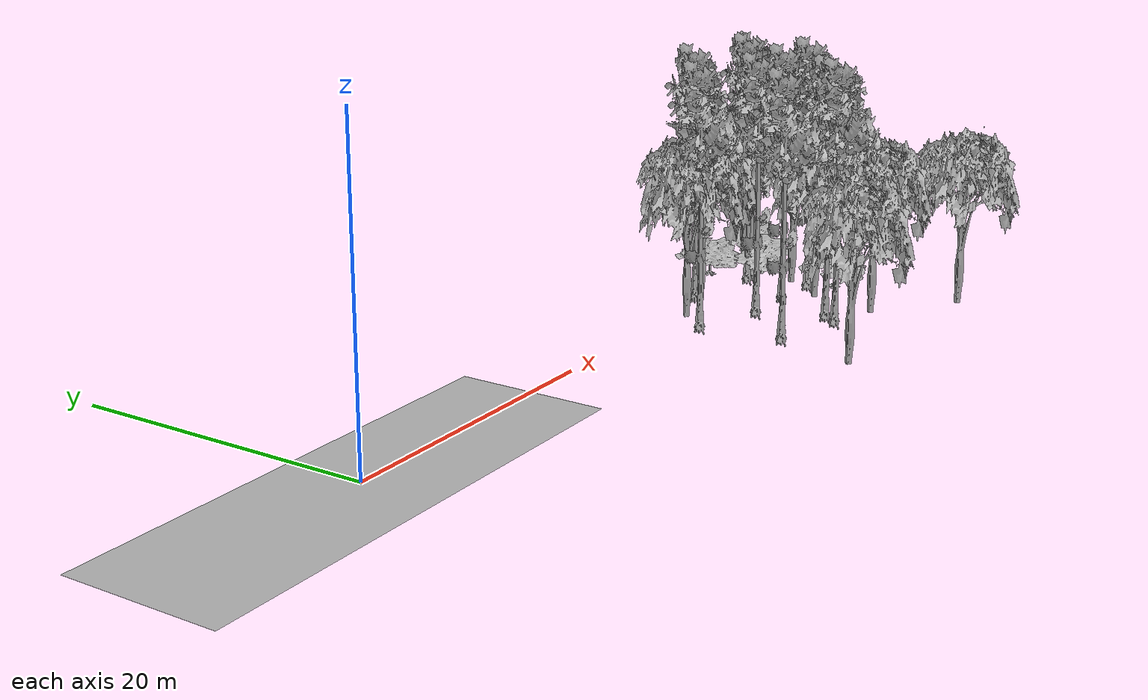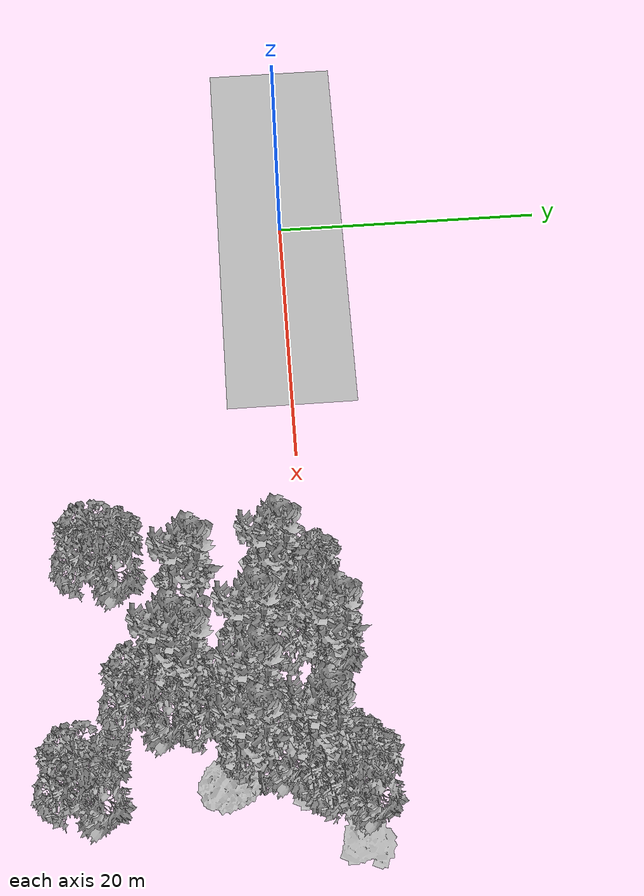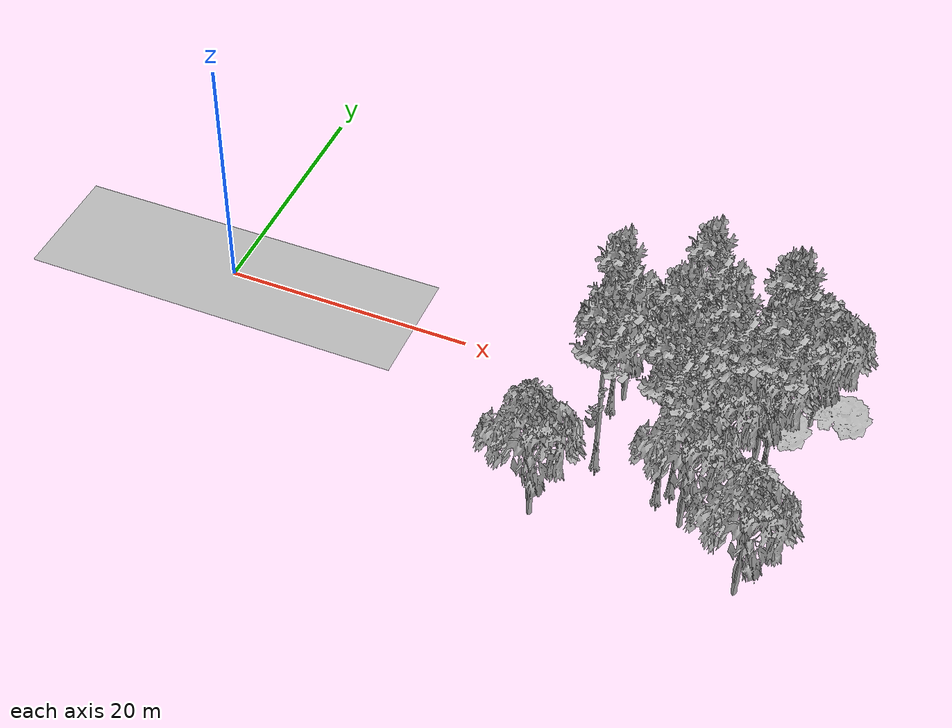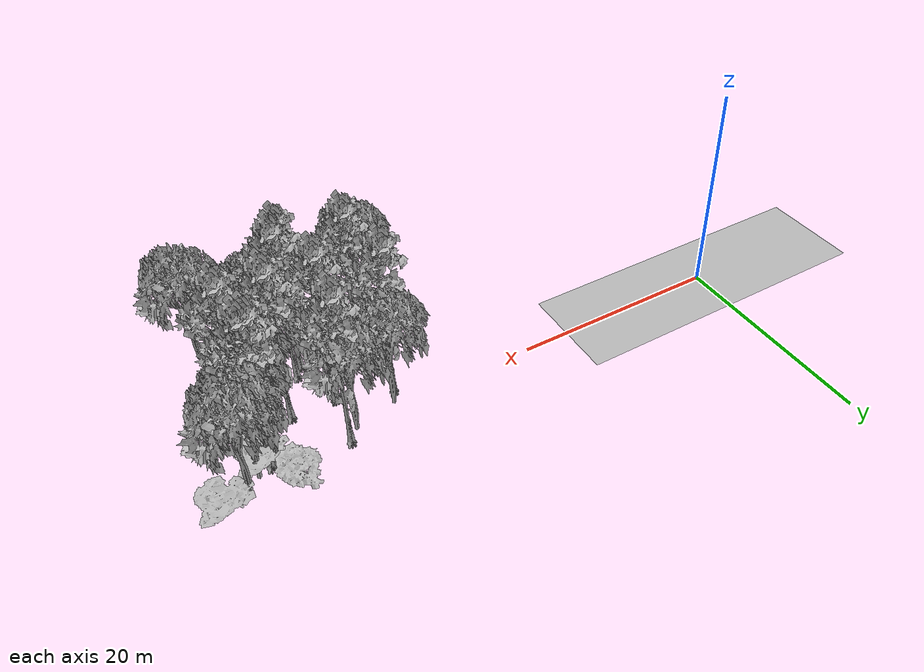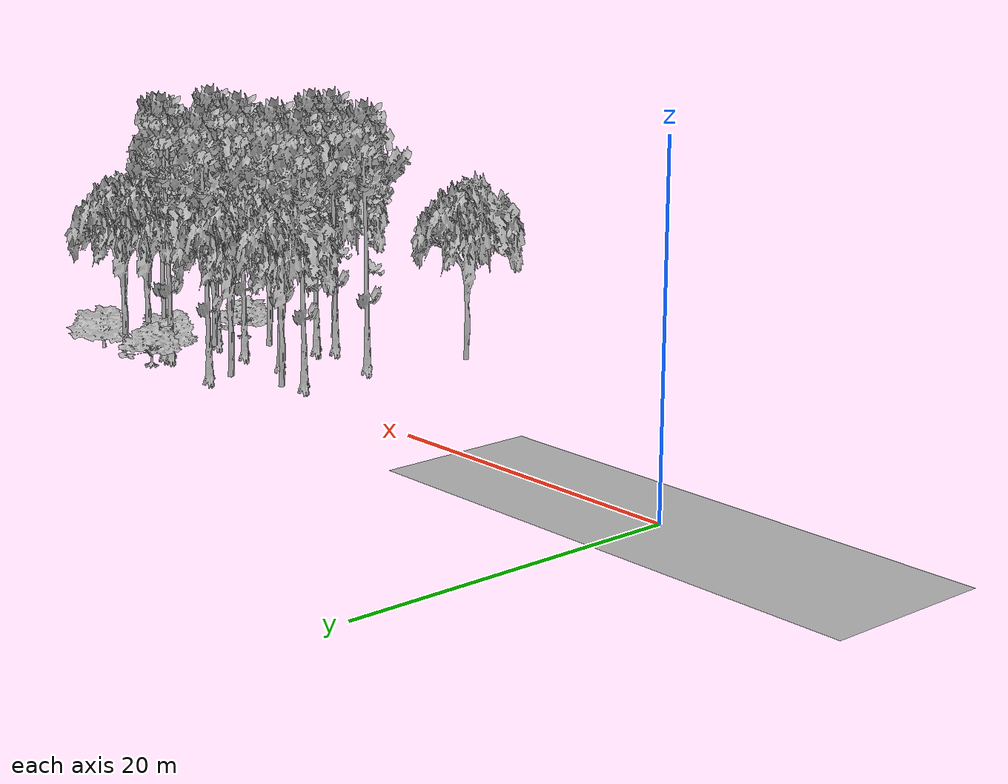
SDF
<sdf version="1.7">
 <world name="default">
  <model name="ground_plane">
   <static>1</static>
   <link name="link">
    <collision name="collision">
     <pose>-50 0 0 0 -0 0</pose>
     <geometry><plane><normal>0 0 1</normal><size>100 100</size></plane></geometry>
     <surface><contact><ode><min_depth>0.01</min_depth><max_vel>0</max_vel></ode></contact></surface>
    </collision>
    <visual name="grass">
     <cast_shadows>0</cast_shadows>
     <geometry>
      <mesh>
       <scale>0.5814285714285714 0.18142857142857144 0.1</scale>
       <uri>file://grass_plane/meshes/grass_plane.dae</uri>
      </mesh>
     </geometry>
    </visual>
   </link>
  </model>
  <model name="Tree 2">
   <static>1</static>
   <pose>45.38698988461415 1.1021665377766503 0 1.57079 -0 0</pose>
   <link name="link">
    <collision name="collision">
     <geometry><mesh><scale>3.5 5 3.5</scale><uri>model://tree_2/meshes/tree_2.obj</uri></mesh></geometry>
    </collision>
    <visual name="visual">
     <geometry><mesh><scale>3.5 5 3.5</scale><uri>model://tree_2/meshes/tree_2.obj</uri></mesh></geometry>
    </visual>
   </link>
  </model>
  <model name="Tree 6">
   <static>1</static>
   <pose>44.363141829020776 0.558316381607467 0 1.57079 -0 0</pose>
   <link name="link">
    <collision name="collision">
     <geometry><mesh><scale>3.5 5 3.5</scale><uri>model://tree_9/meshes/tree_9.obj</uri></mesh></geometry>
    </collision>
    <visual name="visual">
     <geometry><mesh><scale>3.5 5 3.5</scale><uri>model://tree_9/meshes/tree_9.obj</uri></mesh></geometry>
    </visual>
   </link>
  </model>
  <model name="Tree 18">
   <static>1</static>
   <pose>44.79083676963218 -0.20597438506012722 0 1.57079 -0 0</pose>
   <link name="link">
    <collision name="collision">
     <geometry><mesh><scale>3 2 3</scale><uri>model://tree_3/meshes/tree_3.obj</uri></mesh></geometry>
    </collision>
    <visual name="visual">
     <geometry><mesh><scale>3 2 3</scale><uri>model://tree_3/meshes/tree_3.obj</uri></mesh></geometry>
    </visual>
   </link>
  </model>
  <model name="Tree 19">
   <static>1</static>
   <pose>43.74474452205713 0.48922184363445176 0 1.57079 -0 0</pose>
   <link name="link">
    <collision name="collision">
     <geometry><mesh><scale>3.5 5 3.5</scale><uri>model://tree_9/meshes/tree_9.obj</uri></mesh></geometry>
    </collision>
    <visual name="visual">
     <geometry><mesh><scale>3.5 5 3.5</scale><uri>model://tree_9/meshes/tree_9.obj</uri></mesh></geometry>
    </visual>
   </link>
  </model>
  <model name="Tree 21">
   <static>1</static>
   <pose>40.45998238796628 -10.520547793926774 0 1.57079 -0 0</pose>
   <link name="link">
    <collision name="collision">
     <geometry><mesh><scale>3.5 5 3.5</scale><uri>model://tree_2/meshes/tree_2.obj</uri></mesh></geometry>
    </collision>
    <visual name="visual">
     <geometry><mesh><scale>3.5 5 3.5</scale><uri>model://tree_2/meshes/tree_2.obj</uri></mesh></geometry>
    </visual>
   </link>
  </model>
  <model name="Tree 26">
   <static>1</static>
   <pose>38.31958006728536 -8.912998692593735 0 1.57079 -0 0</pose>
   <link name="link">
    <collision name="collision">
     <geometry><mesh><scale>3.5 5 3.5</scale><uri>model://tree_9/meshes/tree_9.obj</uri></mesh></geometry>
    </collision>
    <visual name="visual">
     <geometry><mesh><scale>3.5 5 3.5</scale><uri>model://tree_9/meshes/tree_9.obj</uri></mesh></geometry>
    </visual>
   </link>
  </model>
  <model name="Tree 38">
   <static>1</static>
   <pose>37.23460746593081 -3.5984982082138615 0 1.57079 -0 0</pose>
   <link name="link">
    <collision name="collision">
     <geometry><mesh><scale>3.5 5 3.5</scale><uri>model://tree_9/meshes/tree_9.obj</uri></mesh></geometry>
    </collision>
    <visual name="visual">
     <geometry><mesh><scale>3.5 5 3.5</scale><uri>model://tree_9/meshes/tree_9.obj</uri></mesh></geometry>
    </visual>
   </link>
  </model>
  <model name="Tree 40">
   <static>1</static>
   <pose>39.04368902184419 -7.886512687450794 0 1.57079 -0 0</pose>
   <link name="link">
    <collision name="collision">
     <geometry><mesh><scale>3.5 5 3.5</scale><uri>model://tree_9/meshes/tree_9.obj</uri></mesh></geometry>
    </collision>
    <visual name="visual">
     <geometry><mesh><scale>3.5 5 3.5</scale><uri>model://tree_9/meshes/tree_9.obj</uri></mesh></geometry>
    </visual>
   </link>
  </model>
  <model name="Tree 44">
   <static>1</static>
   <pose>33.22954344768287 -7.547114755973925 0 1.57079 -0 0</pose>
   <link name="link">
    <collision name="collision">
     <geometry><mesh><scale>3.5 5 3.5</scale><uri>model://tree_9/meshes/tree_9.obj</uri></mesh></geometry>
    </collision>
    <visual name="visual">
     <geometry><mesh><scale>3.5 5 3.5</scale><uri>model://tree_9/meshes/tree_9.obj</uri></mesh></geometry>
    </visual>
   </link>
  </model>
  <model name="Tree 48">
   <static>1</static>
   <pose>44.57238236259015 -5.9752397027769515 0 1.57079 -0 0</pose>
   <link name="link">
    <collision name="collision">
     <geometry><mesh><scale>4 2.5 4</scale><uri>model://tree_1/meshes/tree_1.obj</uri></mesh></geometry>
    </collision>
    <visual name="visual">
     <geometry><mesh><scale>4 2.5 4</scale><uri>model://tree_1/meshes/tree_1.obj</uri></mesh></geometry>
    </visual>
   </link>
  </model>
  <model name="Tree 54">
   <static>1</static>
   <pose>44.63615310669459 -3.8234659051967643 0 1.57079 -0 0</pose>
   <link name="link">
    <collision name="collision">
     <geometry><mesh><scale>3.5 5 3.5</scale><uri>model://tree_9/meshes/tree_9.obj</uri></mesh></geometry>
    </collision>
    <visual name="visual">
     <geometry><mesh><scale>3.5 5 3.5</scale><uri>model://tree_9/meshes/tree_9.obj</uri></mesh></geometry>
    </visual>
   </link>
  </model>
  <model name="Tree 66">
   <static>1</static>
   <pose>32.95169529307226 -0.6221834776885977 0 1.57079 -0 0</pose>
   <link name="link">
    <collision name="collision">
     <geometry><mesh><scale>3.5 5 3.5</scale><uri>model://tree_2/meshes/tree_2.obj</uri></mesh></geometry>
    </collision>
    <visual name="visual">
     <geometry><mesh><scale>3.5 5 3.5</scale><uri>model://tree_2/meshes/tree_2.obj</uri></mesh></geometry>
    </visual>
   </link>
  </model>
  <model name="Tree 75">
   <static>1</static>
   <pose>42.47233707911823 2.8317539919744377 0 1.57079 -0 0</pose>
   <link name="link">
    <collision name="collision">
     <geometry><mesh><scale>4 2.5 4</scale><uri>model://tree_1/meshes/tree_1.obj</uri></mesh></geometry>
    </collision>
    <visual name="visual">
     <geometry><mesh><scale>4 2.5 4</scale><uri>model://tree_1/meshes/tree_1.obj</uri></mesh></geometry>
    </visual>
   </link>
  </model>
  <model name="Tree 77">
   <static>1</static>
   <pose>41.162979464409304 -3.563890950978651 0 1.57079 -0 0</pose>
   <link name="link">
    <collision name="collision">
     <geometry><mesh><scale>3.5 5 3.5</scale><uri>model://tree_9/meshes/tree_9.obj</uri></mesh></geometry>
    </collision>
    <visual name="visual">
     <geometry><mesh><scale>3.5 5 3.5</scale><uri>model://tree_9/meshes/tree_9.obj</uri></mesh></geometry>
    </visual>
   </link>
  </model>
  <model name="Tree 103">
   <static>1</static>
   <pose>32.472551682838656 -1.924593012322859 0 1.57079 -0 0</pose>
   <link name="link">
    <collision name="collision">
     <geometry><mesh><scale>3.5 5 3.5</scale><uri>model://tree_9/meshes/tree_9.obj</uri></mesh></geometry>
    </collision>
    <visual name="visual">
     <geometry><mesh><scale>3.5 5 3.5</scale><uri>model://tree_9/meshes/tree_9.obj</uri></mesh></geometry>
    </visual>
   </link>
  </model>
  <model name="Tree 119">
   <static>1</static>
   <pose>36.854502510275125 0.4696625161224741 0 1.57079 -0 0</pose>
   <link name="link">
    <collision name="collision">
     <geometry><mesh><scale>3.5 5 3.5</scale><uri>model://tree_2/meshes/tree_2.obj</uri></mesh></geometry>
    </collision>
    <visual name="visual">
     <geometry><mesh><scale>3.5 5 3.5</scale><uri>model://tree_2/meshes/tree_2.obj</uri></mesh></geometry>
    </visual>
   </link>
  </model>
  <model name="Tree 125">
   <static>1</static>
   <pose>41.4750126992798 -5.873161831203523 0 1.57079 -0 0</pose>
   <link name="link">
    <collision name="collision">
     <geometry><mesh><scale>3.5 5 3.5</scale><uri>model://tree_2/meshes/tree_2.obj</uri></mesh></geometry>
    </collision>
    <visual name="visual">
     <geometry><mesh><scale>3.5 5 3.5</scale><uri>model://tree_2/meshes/tree_2.obj</uri></mesh></geometry>
    </visual>
   </link>
  </model>
  <model name="Tree 127">
   <static>1</static>
   <pose>46.45430064194828 2.225671304277771 0 1.57079 -0 0</pose>
   <link name="link">
    <collision name="collision">
     <geometry><mesh><scale>3.5 5 3.5</scale><uri>model://tree_2/meshes/tree_2.obj</uri></mesh></geometry>
    </collision>
    <visual name="visual">
     <geometry><mesh><scale>3.5 5 3.5</scale><uri>model://tree_2/meshes/tree_2.obj</uri></mesh></geometry>
    </visual>
   </link>
  </model>
  <model name="Tree 144">
   <static>1</static>
   <pose>43.71999418046342 -3.008882506897667 0 1.57079 -0 0</pose>
   <link name="link">
    <collision name="collision">
     <geometry><mesh><scale>3.5 5 3.5</scale><uri>model://tree_2/meshes/tree_2.obj</uri></mesh></geometry>
    </collision>
    <visual name="visual">
     <geometry><mesh><scale>3.5 5 3.5</scale><uri>model://tree_2/meshes/tree_2.obj</uri></mesh></geometry>
    </visual>
   </link>
  </model>
  <model name="Tree 163">
   <static>1</static>
   <pose>45.6432736228481 -14.623640948598574 0 1.57079 -0 0</pose>
   <link name="link">
    <collision name="collision">
     <geometry><mesh><scale>3.5 5 3.5</scale><uri>model://tree_2/meshes/tree_2.obj</uri></mesh></geometry>
    </collision>
    <visual name="visual">
     <geometry><mesh><scale>3.5 5 3.5</scale><uri>model://tree_2/meshes/tree_2.obj</uri></mesh></geometry>
    </visual>
   </link>
  </model>
  <model name="Tree 168">
   <static>1</static>
   <pose>48.586318090994 2.6090973260468644 0 1.57079 -0 0</pose>
   <link name="link">
    <collision name="collision">
     <geometry><mesh><scale>3 2 3</scale><uri>model://tree_3/meshes/tree_3.obj</uri></mesh></geometry>
    </collision>
    <visual name="visual">
     <geometry><mesh><scale>3 2 3</scale><uri>model://tree_3/meshes/tree_3.obj</uri></mesh></geometry>
    </visual>
   </link>
  </model>
  <model name="Tree 170">
   <static>1</static>
   <pose>37.89961195268825 1.4918518552802311 0 1.57079 -0 0</pose>
   <link name="link">
    <collision name="collision">
     <geometry><mesh><scale>3.5 5 3.5</scale><uri>model://tree_9/meshes/tree_9.obj</uri></mesh></geometry>
    </collision>
    <visual name="visual">
     <geometry><mesh><scale>3.5 5 3.5</scale><uri>model://tree_9/meshes/tree_9.obj</uri></mesh></geometry>
    </visual>
   </link>
  </model>
  <model name="Tree 171">
   <static>1</static>
   <pose>30.3548481787778 -13.574081626649356 0 1.57079 -0 0</pose>
   <link name="link">
    <collision name="collision">
     <geometry><mesh><scale>3.5 5 3.5</scale><uri>model://tree_2/meshes/tree_2.obj</uri></mesh></geometry>
    </collision>
    <visual name="visual">
     <geometry><mesh><scale>3.5 5 3.5</scale><uri>model://tree_2/meshes/tree_2.obj</uri></mesh></geometry>
    </visual>
   </link>
  </model>
 </world>
</sdf>
